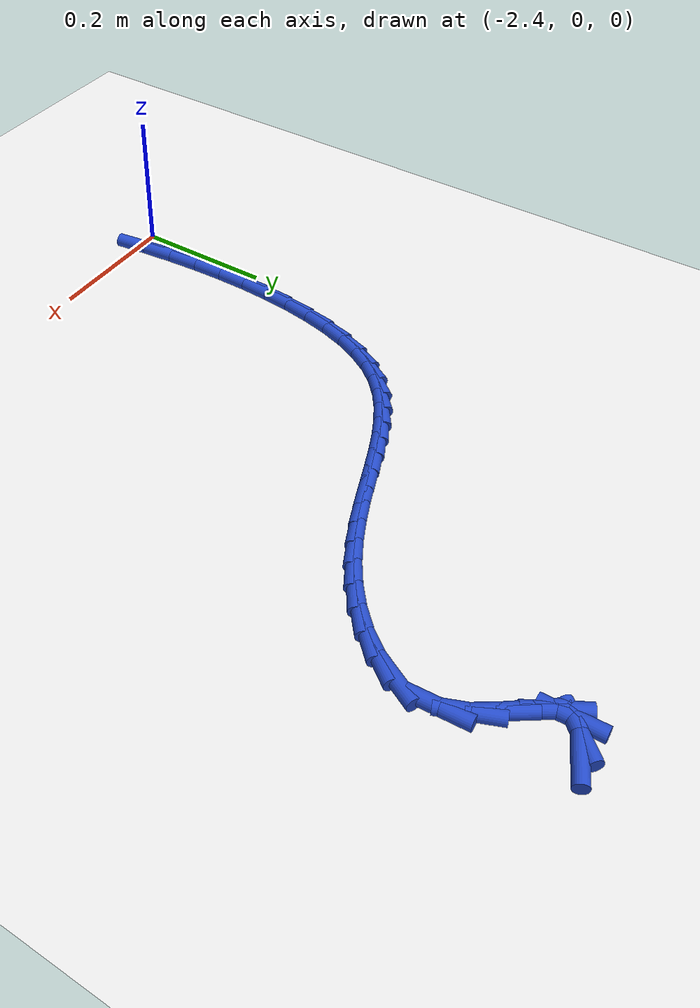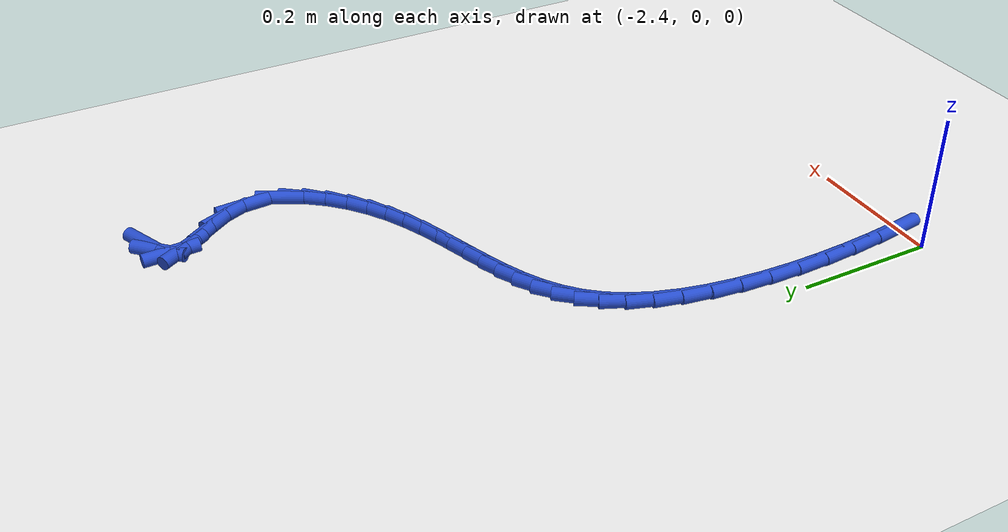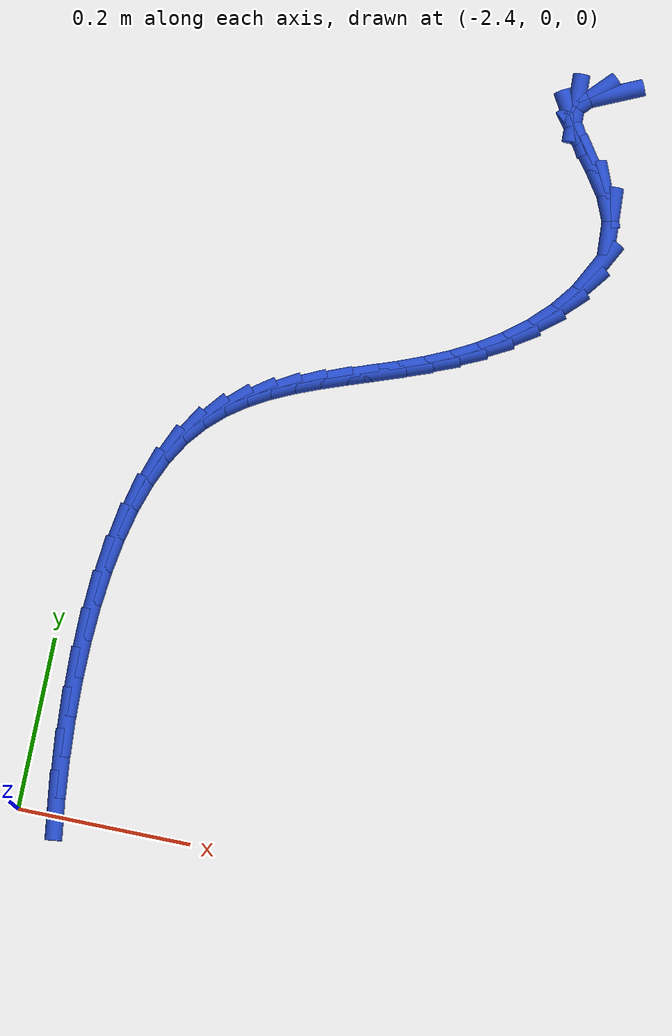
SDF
<sdf version="1.6">
 <world name="default">
  <model name="ground_plane">
   <static>1</static>
   <link name="link">
    <collision name="collision">
     <geometry><plane><normal>0 0 1</normal><size>100 100</size></plane></geometry>
     <surface><friction><ode><mu>100</mu><mu2>50</mu2></ode></friction></surface>
    </collision>
    <visual name="visual">
     <cast_shadows>0</cast_shadows>
     <geometry><plane><normal>0 0 1</normal><size>100 100</size></plane></geometry>
     <material>
      <script><uri>file://media/materials/scripts/gazebo.material</uri><name>Gazebo/WhiteGlow</name></script>
     </material>
    </visual>
   </link>
  </model>
  <model name="line">
   <link name="link_105">
    <pose>-1.9044023837845536 0.9468729961632891 0.01 0 1.57 0.4281217287057657</pose>
    <collision name="collision">
     <geometry><cylinder><radius>0.01</radius><length>0.08</length></cylinder></geometry>
    </collision>
    <visual name="visual">
     <material>
      <script><name>Gazebo/Blue</name><uri>file://media/materials/scripts/gazebo.material</uri></script>
     </material>
     <geometry><cylinder><radius>0.01</radius><length>0.08</length></cylinder></geometry>
    </visual>
   </link>
   <link name="link_106">
    <pose>-1.9272169901761207 0.9364615586761169 0.01 0 1.57 0.8230864027785273</pose>
    <collision name="collision">
     <geometry><cylinder><radius>0.01</radius><length>0.08</length></cylinder></geometry>
    </collision>
    <visual name="visual">
     <material>
      <script><name>Gazebo/Blue</name><uri>file://media/materials/scripts/gazebo.material</uri></script>
     </material>
     <geometry><cylinder><radius>0.01</radius><length>0.08</length></cylinder></geometry>
    </visual>
   </link>
   <link name="link_107">
    <pose>-1.9396046788192758 0.9231030827390676 0.01 0 1.57 -1.5332505947066821</pose>
    <collision name="collision">
     <geometry><cylinder><radius>0.01</radius><length>0.08</length></cylinder></geometry>
    </collision>
    <visual name="visual">
     <material>
      <script><name>Gazebo/Blue</name><uri>file://media/materials/scripts/gazebo.material</uri></script>
     </material>
     <geometry><cylinder><radius>0.01</radius><length>0.08</length></cylinder></geometry>
    </visual>
   </link>
   <link name="link_108">
    <pose>-1.9389517091335002 0.9057199397265424 0.01 0 1.57 -1.02222089531839</pose>
    <collision name="collision">
     <geometry><cylinder><radius>0.01</radius><length>0.08</length></cylinder></geometry>
    </collision>
    <visual name="visual">
     <material>
      <script><name>Gazebo/Blue</name><uri>file://media/materials/scripts/gazebo.material</uri></script>
     </material>
     <geometry><cylinder><radius>0.01</radius><length>0.08</length></cylinder></geometry>
    </visual>
   </link>
   <link name="link_109">
    <pose>-1.9256227477849466 0.8839101879468563 0.01 0 1.57 -0.9065002813972529</pose>
    <collision name="collision">
     <geometry><cylinder><radius>0.01</radius><length>0.08</length></cylinder></geometry>
    </collision>
    <visual name="visual">
     <material>
      <script><name>Gazebo/Blue</name><uri>file://media/materials/scripts/gazebo.material</uri></script>
     </material>
     <geometry><cylinder><radius>0.01</radius><length>0.08</length></cylinder></geometry>
    </visual>
   </link>
   <link name="link_110">
    <pose>-1.9057976246068313 0.8585911242963155 0.01 0 1.57 -0.9591507470025654</pose>
    <collision name="collision">
     <geometry><cylinder><radius>0.01</radius><length>0.08</length></cylinder></geometry>
    </collision>
    <visual name="visual">
     <material>
      <script><name>Gazebo/Blue</name><uri>file://media/materials/scripts/gazebo.material</uri></script>
     </material>
     <geometry><cylinder><radius>0.01</radius><length>0.08</length></cylinder></geometry>
    </visual>
   </link>
   <link name="link_111">
    <pose>-1.8863285925737137 0.8308325928190939 0.01 0 1.57 -1.1702026861912511</pose>
    <collision name="collision">
     <geometry><cylinder><radius>0.01</radius><length>0.08</length></cylinder></geometry>
    </collision>
    <visual name="visual">
     <material>
      <script><name>Gazebo/Blue</name><uri>file://media/materials/scripts/gazebo.material</uri></script>
     </material>
     <geometry><cylinder><radius>0.01</radius><length>0.08</length></cylinder></geometry>
    </visual>
   </link>
   <link name="link_112">
    <pose>-1.8739916496610654 0.8017012057127425 0.01 0 1.57 -1.5082070697724257</pose>
    <collision name="collision">
     <geometry><cylinder><radius>0.01</radius><length>0.08</length></cylinder></geometry>
    </collision>
    <visual name="visual">
     <material>
      <script><name>Gazebo/Blue</name><uri>file://media/materials/scripts/gazebo.material</uri></script>
     </material>
     <geometry><cylinder><radius>0.01</radius><length>0.08</length></cylinder></geometry>
    </visual>
   </link>
   <link name="link_114">
    <pose>-1.879381581000052 0.7428049383608774 0.01 0 1.57 1.094786901410251</pose>
    <collision name="collision">
     <geometry><cylinder><radius>0.01</radius><length>0.08</length></cylinder></geometry>
    </collision>
    <visual name="visual">
     <material>
      <script><name>Gazebo/Blue</name><uri>file://media/materials/scripts/gazebo.material</uri></script>
     </material>
     <geometry><cylinder><radius>0.01</radius><length>0.08</length></cylinder></geometry>
    </visual>
   </link>
   <link name="link_115">
    <pose>-1.8939912805327623 0.7144668081342271 0.01 0 1.57 0.9213013553132055</pose>
    <collision name="collision">
     <geometry><cylinder><radius>0.01</radius><length>0.08</length></cylinder></geometry>
    </collision>
    <visual name="visual">
     <material>
      <script><name>Gazebo/Blue</name><uri>file://media/materials/scripts/gazebo.material</uri></script>
     </material>
     <geometry><cylinder><radius>0.01</radius><length>0.08</length></cylinder></geometry>
    </visual>
   </link>
   <link name="link_116">
    <pose>-1.9142346382240836 0.6878100404633173 0.01 0 1.57 0.7879695559260553</pose>
    <collision name="collision">
     <geometry><cylinder><radius>0.01</radius><length>0.08</length></cylinder></geometry>
    </collision>
    <visual name="visual">
     <material>
      <script><name>Gazebo/Blue</name><uri>file://media/materials/scripts/gazebo.material</uri></script>
     </material>
     <geometry><cylinder><radius>0.01</radius><length>0.08</length></cylinder></geometry>
    </visual>
   </link>
   <link name="link_117">
    <pose>-1.9383795307613656 0.6635406555403122 0.01 0 1.57 0.6776631960818741</pose>
    <collision name="collision">
     <geometry><cylinder><radius>0.01</radius><length>0.08</length></cylinder></geometry>
    </collision>
    <visual name="visual">
     <material>
      <script><name>Gazebo/Blue</name><uri>file://media/materials/scripts/gazebo.material</uri></script>
     </material>
     <geometry><cylinder><radius>0.01</radius><length>0.08</length></cylinder></geometry>
    </visual>
   </link>
   <link name="link_118">
    <pose>-1.9647214958269106 0.6423405435313365 0.01 0 1.57 0.5803887002734047</pose>
    <collision name="collision">
     <geometry><cylinder><radius>0.01</radius><length>0.08</length></cylinder></geometry>
    </collision>
    <visual name="visual">
     <material>
      <script><name>Gazebo/Blue</name><uri>file://media/materials/scripts/gazebo.material</uri></script>
     </material>
     <geometry><cylinder><radius>0.01</radius><length>0.08</length></cylinder></geometry>
    </visual>
   </link>
   <link name="link_119">
    <pose>-1.9922352646145982 0.6242991011962341 0.01 0 1.57 0.4976077750589362</pose>
    <collision name="collision">
     <geometry><cylinder><radius>0.01</radius><length>0.08</length></cylinder></geometry>
    </collision>
    <visual name="visual">
     <material>
      <script><name>Gazebo/Blue</name><uri>file://media/materials/scripts/gazebo.material</uri></script>
     </material>
     <geometry><cylinder><radius>0.01</radius><length>0.08</length></cylinder></geometry>
    </visual>
   </link>
   <link name="link_120">
    <pose>-2.020599540471911 0.608891616278634 0.01 0 1.57 0.43172882854278377</pose>
    <collision name="collision">
     <geometry><cylinder><radius>0.01</radius><length>0.08</length></cylinder></geometry>
    </collision>
    <visual name="visual">
     <material>
      <script><name>Gazebo/Blue</name><uri>file://media/materials/scripts/gazebo.material</uri></script>
     </material>
     <geometry><cylinder><radius>0.01</radius><length>0.08</length></cylinder></geometry>
    </visual>
   </link>
   <link name="link_121">
    <pose>-2.0495256454644766 0.5955649216339887 0.01 0 1.57 0.3840256126877016</pose>
    <collision name="collision">
     <geometry><cylinder><radius>0.01</radius><length>0.08</length></cylinder></geometry>
    </collision>
    <visual name="visual">
     <material>
      <script><name>Gazebo/Blue</name><uri>file://media/materials/scripts/gazebo.material</uri></script>
     </material>
     <geometry><cylinder><radius>0.01</radius><length>0.08</length></cylinder></geometry>
    </visual>
   </link>
   <link name="link_122">
    <pose>-2.0787249016579232 0.58376585011775 0.01 0 1.57 0.355182466868985</pose>
    <collision name="collision">
     <geometry><cylinder><radius>0.01</radius><length>0.08</length></cylinder></geometry>
    </collision>
    <visual name="visual">
     <material>
      <script><name>Gazebo/Blue</name><uri>file://media/materials/scripts/gazebo.material</uri></script>
     </material>
     <geometry><cylinder><radius>0.01</radius><length>0.08</length></cylinder></geometry>
    </visual>
   </link>
   <link name="link_123">
    <pose>-2.107908631117879 0.57294123458537 0.01 0 1.57 0.3457608778939377</pose>
    <collision name="collision">
     <geometry><cylinder><radius>0.01</radius><length>0.08</length></cylinder></geometry>
    </collision>
    <visual name="visual">
     <material>
      <script><name>Gazebo/Blue</name><uri>file://media/materials/scripts/gazebo.material</uri></script>
     </material>
     <geometry><cylinder><radius>0.01</radius><length>0.08</length></cylinder></geometry>
    </visual>
   </link>
   <link name="link_124">
    <pose>-2.1367881559099717 0.5625379078923014 0.01 0 1.57 0.3565283732129127</pose>
    <collision name="collision">
     <geometry><cylinder><radius>0.01</radius><length>0.08</length></cylinder></geometry>
    </collision>
    <visual name="visual">
     <material>
      <script><name>Gazebo/Blue</name><uri>file://media/materials/scripts/gazebo.material</uri></script>
     </material>
     <geometry><cylinder><radius>0.01</radius><length>0.08</length></cylinder></geometry>
    </visual>
   </link>
   <link name="link_125">
    <pose>-2.165074798099829 0.5520027028939954 0.01 0 1.57 0.38860253215449553</pose>
    <collision name="collision">
     <geometry><cylinder><radius>0.01</radius><length>0.08</length></cylinder></geometry>
    </collision>
    <visual name="visual">
     <material>
      <script><name>Gazebo/Blue</name><uri>file://media/materials/scripts/gazebo.material</uri></script>
     </material>
     <geometry><cylinder><radius>0.01</radius><length>0.08</length></cylinder></geometry>
    </visual>
   </link>
   <link name="link_126">
    <pose>-2.1924798797530807 0.5407824524459045 0.01 0 1.57 0.4433523109696915</pose>
    <collision name="collision">
     <geometry><cylinder><radius>0.01</radius><length>0.08</length></cylinder></geometry>
    </collision>
    <visual name="visual">
     <material>
      <script><name>Gazebo/Blue</name><uri>file://media/materials/scripts/gazebo.material</uri></script>
     </material>
     <geometry><cylinder><radius>0.01</radius><length>0.08</length></cylinder></geometry>
    </visual>
   </link>
   <link name="link_127">
    <pose>-2.218714722935352 0.5283239894034809 0.01 0 1.57 0.5219460459893682</pose>
    <collision name="collision">
     <geometry><cylinder><radius>0.01</radius><length>0.08</length></cylinder></geometry>
    </collision>
    <visual name="visual">
     <material>
      <script><name>Gazebo/Blue</name><uri>file://media/materials/scripts/gazebo.material</uri></script>
     </material>
     <geometry><cylinder><radius>0.01</radius><length>0.08</length></cylinder></geometry>
    </visual>
   </link>
   <link name="link_128">
    <pose>-2.2434906497122733 0.5140741466221765 0.01 0 1.57 0.6244230470300846</pose>
    <collision name="collision">
     <geometry><cylinder><radius>0.01</radius><length>0.08</length></cylinder></geometry>
    </collision>
    <visual name="visual">
     <material>
      <script><name>Gazebo/Blue</name><uri>file://media/materials/scripts/gazebo.material</uri></script>
     </material>
     <geometry><cylinder><radius>0.01</radius><length>0.08</length></cylinder></geometry>
    </visual>
   </link>
   <link name="link_129">
    <pose>-2.26651898214947 0.4974797569574432 0.01 0 1.57 0.7483646533934906</pose>
    <collision name="collision">
     <geometry><cylinder><radius>0.01</radius><length>0.08</length></cylinder></geometry>
    </collision>
    <visual name="visual">
     <material>
      <script><name>Gazebo/Blue</name><uri>file://media/materials/scripts/gazebo.material</uri></script>
     </material>
     <geometry><cylinder><radius>0.01</radius><length>0.08</length></cylinder></geometry>
    </visual>
   </link>
   <link name="link_130">
    <pose>-2.287511042312572 0.4779876532647337 0.01 0 1.57 0.887799248706712</pose>
    <collision name="collision">
     <geometry><cylinder><radius>0.01</radius><length>0.08</length></cylinder></geometry>
    </collision>
    <visual name="visual">
     <material>
      <script><name>Gazebo/Blue</name><uri>file://media/materials/scripts/gazebo.material</uri></script>
     </material>
     <geometry><cylinder><radius>0.01</radius><length>0.08</length></cylinder></geometry>
    </visual>
   </link>
   <link name="link_131">
    <pose>-2.306178152267207 0.45504466839949936 0.01 0 1.57 1.0313009640898205</pose>
    <collision name="collision">
     <geometry><cylinder><radius>0.01</radius><length>0.08</length></cylinder></geometry>
    </collision>
    <visual name="visual">
     <material>
      <script><name>Gazebo/Blue</name><uri>file://media/materials/scripts/gazebo.material</uri></script>
     </material>
     <geometry><cylinder><radius>0.01</radius><length>0.08</length></cylinder></geometry>
    </visual>
   </link>
   <link name="link_132">
    <pose>-2.3222652499253735 0.4281765892598661 0.01 0 1.57 1.1562332860156057</pose>
    <collision name="collision">
     <geometry><cylinder><radius>0.01</radius><length>0.08</length></cylinder></geometry>
    </collision>
    <visual name="visual">
     <material>
      <script><name>Gazebo/Blue</name><uri>file://media/materials/scripts/gazebo.material</uri></script>
     </material>
     <geometry><cylinder><radius>0.01</radius><length>0.08</length></cylinder></geometry>
    </visual>
   </link>
   <link name="link_133">
    <pose>-2.335766941271209 0.39749560189046773 0.01 0 1.57 1.2582884202407254</pose>
    <collision name="collision">
     <geometry><cylinder><radius>0.01</radius><length>0.08</length></cylinder></geometry>
    </collision>
    <visual name="visual">
     <material>
      <script><name>Gazebo/Blue</name><uri>file://media/materials/scripts/gazebo.material</uri></script>
     </material>
     <geometry><cylinder><radius>0.01</radius><length>0.08</length></cylinder></geometry>
    </visual>
   </link>
   <link name="link_134">
    <pose>-2.3467902157856275 0.36337784914078736 0.01 0 1.57 1.3421325723324122</pose>
    <collision name="collision">
     <geometry><cylinder><radius>0.01</radius><length>0.08</length></cylinder></geometry>
    </collision>
    <visual name="visual">
     <material>
      <script><name>Gazebo/Blue</name><uri>file://media/materials/scripts/gazebo.material</uri></script>
     </material>
     <geometry><cylinder><radius>0.01</radius><length>0.08</length></cylinder></geometry>
    </visual>
   </link>
   <link name="link_135">
    <pose>-2.355442603461832 0.3262007433696216 0.01 0 1.57 1.4118577222512352</pose>
    <collision name="collision">
     <geometry><cylinder><radius>0.01</radius><length>0.08</length></cylinder></geometry>
    </collision>
    <visual name="visual">
     <material>
      <script><name>Gazebo/Blue</name><uri>file://media/materials/scripts/gazebo.material</uri></script>
     </material>
     <geometry><cylinder><radius>0.01</radius><length>0.08</length></cylinder></geometry>
    </visual>
   </link>
   <link name="link_136">
    <pose>-2.3618316342930226 0.28634169693576683 0.01 0 1.57 1.4707320947558178</pose>
    <collision name="collision">
     <geometry><cylinder><radius>0.01</radius><length>0.08</length></cylinder></geometry>
    </collision>
    <visual name="visual">
     <material>
      <script><name>Gazebo/Blue</name><uri>file://media/materials/scripts/gazebo.material</uri></script>
     </material>
     <geometry><cylinder><radius>0.01</radius><length>0.08</length></cylinder></geometry>
    </visual>
   </link>
   <link name="link_137">
    <pose>-2.366064838272401 0.24417812219801943 0.01 0 1.57 1.5212819908124804</pose>
    <collision name="collision">
     <geometry><cylinder><radius>0.01</radius><length>0.08</length></cylinder></geometry>
    </collision>
    <visual name="visual">
     <material>
      <script><name>Gazebo/Blue</name><uri>file://media/materials/scripts/gazebo.material</uri></script>
     </material>
     <geometry><cylinder><radius>0.01</radius><length>0.08</length></cylinder></geometry>
    </visual>
   </link>
   <link name="link_138">
    <pose>-2.3682497453931686 0.20008743151517558 0.01 0 1.57 1.5654471633906486</pose>
    <collision name="collision">
     <geometry><cylinder><radius>0.01</radius><length>0.08</length></cylinder></geometry>
    </collision>
    <visual name="visual">
     <material>
      <script><name>Gazebo/Blue</name><uri>file://media/materials/scripts/gazebo.material</uri></script>
     </material>
     <geometry><cylinder><radius>0.01</radius><length>0.08</length></cylinder></geometry>
    </visual>
   </link>
   <link name="link_139">
    <pose>-2.368493885648526 0.15444703724603162 0.01 0 1.57 -1.5368635019952248</pose>
    <collision name="collision">
     <geometry><cylinder><radius>0.01</radius><length>0.08</length></cylinder></geometry>
    </collision>
    <visual name="visual">
     <material>
      <script><name>Gazebo/Blue</name><uri>file://media/materials/scripts/gazebo.material</uri></script>
     </material>
     <geometry><cylinder><radius>0.01</radius><length>0.08</length></cylinder></geometry>
    </visual>
   </link>
   <link name="link_140">
    <pose>-2.3669047890316746 0.1076343517493845 0.01 0 1.57 -1.5012808551956165</pose>
    <collision name="collision">
     <geometry><cylinder><radius>0.01</radius><length>0.08</length></cylinder></geometry>
    </collision>
    <visual name="visual">
     <material>
      <script><name>Gazebo/Blue</name><uri>file://media/materials/scripts/gazebo.material</uri></script>
     </material>
     <geometry><cylinder><radius>0.01</radius><length>0.08</length></cylinder></geometry>
    </visual>
   </link>
   <link name="link_141">
    <pose>-2.3635899855358167 0.06002678738402921 0.01 0 1.57 -1.4684384436042428</pose>
    <collision name="collision">
     <geometry><cylinder><radius>0.01</radius><length>0.08</length></cylinder></geometry>
    </collision>
    <visual name="visual">
     <material>
      <script><name>Gazebo/Blue</name><uri>file://media/materials/scripts/gazebo.material</uri></script>
     </material>
     <geometry><cylinder><radius>0.01</radius><length>0.08</length></cylinder></geometry>
    </visual>
   </link>
   <link name="link_142">
    <pose>-2.358657005154152 0.01200175650876259 0.01 0 1.57 -1.4375304396478903</pose>
    <collision name="collision">
     <geometry><cylinder><radius>0.01</radius><length>0.08</length></cylinder></geometry>
    </collision>
    <visual name="visual">
     <material>
      <script><name>Gazebo/Blue</name><uri>file://media/materials/scripts/gazebo.material</uri></script>
     </material>
     <geometry><cylinder><radius>0.01</radius><length>0.08</length></cylinder></geometry>
    </visual>
   </link>
  </model>
 </world>
</sdf>
